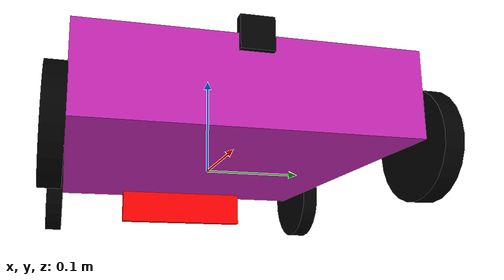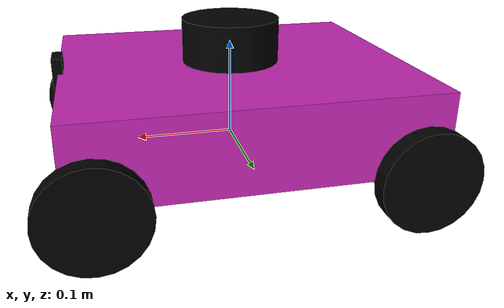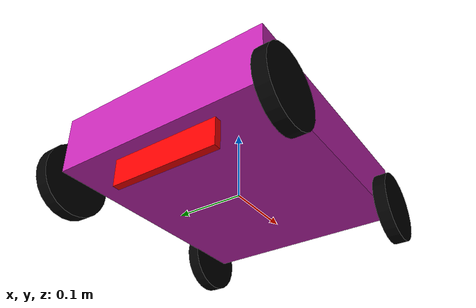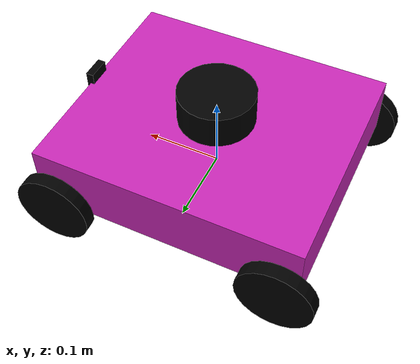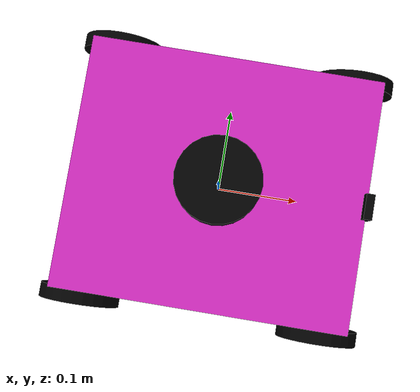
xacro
<?xml version="1.0"?>
<robot xmlns:xacro="http://www.ros.org/wiki/xacro" name="robot">
    <!-- Main URDF file for Ackermann Drive Robot -->
    <!-- Include general xacro files -->
    <xacro:include filename="inertials.xacro"/>
    <xacro:include filename="materials.xacro"/>

    <!-- Include sensors -->
    <xacro:include filename="lidar.xacro"/>
    <xacro:include filename="depth_camera.xacro"/>

    <!-- Robot Variables -->
    <xacro:property name="body_mass" value="20.0" />
    <xacro:property name="wheel_mass" value="3.0" />
    <xacro:property name="steering_mass" value="0.01" />

    <xacro:property name="body_length" value="0.35" />
    <xacro:property name="body_width" value="0.3" />
    <xacro:property name="body_heigth" value="0.08" />

    <xacro:property name="front_wheel_offset_x" value="0.15" />
    <xacro:property name="rear_wheel_offset_x" value="-0.15" />

    <xacro:property name="wheel_offset_y" value="${body_width/2 + wheel_thickness/2}" />
    <xacro:property name="wheel_offset_z" value="0.0" />

    <xacro:property name="wheel_radius" value="0.05" />
    <xacro:property name="wheel_thickness" value="0.018" />

    <!-- Base Link -->
    <link name="base_link"></link>

    <!-- Base Footprint -->
    <joint name="base_footprint_joint" type="fixed">
        <parent link="base_link"/>
        <child link="base_footprint"/>
        <origin xyz="0 0 0" rpy="0 0 0"/>
    </joint>
    <link name="base_footprint"></link>

    <!-- Chassis -->
    <joint name="chassis_joint" type="fixed">
        <parent link="base_link" />
        <child link="chassis" />
        <origin xyz="0 0 0" rpy="0 0 0" />
    </joint>
    <link name="chassis">
        <visual>
            <origin xyz="0 0 ${body_heigth/2}"/>
            <geometry>
                <box size="${body_length} ${body_width} ${body_heigth}"/>
            </geometry>
            <material name="purple"/>
        </visual>
        <collision>
            <origin xyz="0 0 ${body_heigth/2}"/>
            <geometry>
                <box size="${body_length} ${body_width} ${body_heigth}"/>
            </geometry>
        </collision>
        <xacro:inertial_box mass="${body_mass}" x="${body_length}" y="${body_width}" z="${body_heigth}">
            <origin xyz="0 0 0" rpy="0 0 0"/>
        </xacro:inertial_box>
    </link>

    <!-- Left Wheel Steer -->
    <joint name="left_steer_joint" type="revolute">
        <parent link="chassis" />
        <child link="front_left_steer" />
        <origin xyz="${front_wheel_offset_x} ${wheel_offset_y} ${wheel_offset_z}" rpy="0 0 0" />
        <axis xyz="0 0 1" />
        <limit upper="0.6" lower="-0.6" effort="-1.0" velocity="-1.0" />
    </joint>
    <link name="front_left_steer">
        <inertial>
            <origin xyz="0 0 0" rpy="0 0 0" />
            <mass value="${steering_mass}" />
            <inertia
                ixx="${steering_mass/12*(3*wheel_radius*wheel_radius + wheel_thickness*wheel_thickness)}"
                ixy="0" ixz="0"
                iyy="${steering_mass/12*(3*wheel_radius*wheel_radius + wheel_thickness*wheel_thickness)}"
                iyz="0" izz="${steering_mass/2 * wheel_radius*wheel_radius}" />
        </inertial>
    </link>

    <!-- Right Wheel Steer -->
    <joint name="right_steer_joint" type="revolute">
        <parent link="chassis" />
        <child link="front_right_steer" />
        <origin xyz="${front_wheel_offset_x} ${-wheel_offset_y} ${wheel_offset_z}" rpy="0 0 0" />
        <axis xyz="0 0 1" />
        <limit upper="0.6" lower="-0.6" effort="-1.0" velocity="-1.0" />
    </joint>
    <link name="front_right_steer">
        <inertial>
            <origin xyz="0 0 0" rpy="0 0 0" />
            <mass value="${steering_mass}" />
            <inertia
                ixx="${steering_mass/12*(3*wheel_radius*wheel_radius + wheel_thickness*wheel_thickness)}"
                ixy="0" ixz="0"
                iyy="${steering_mass/12*(3*wheel_radius*wheel_radius + wheel_thickness*wheel_thickness)}"
                iyz="0" izz="${steering_mass/2 * wheel_radius*wheel_radius}" />
        </inertial>
    </link>

    <!-- Front Left Wheel -->
    <joint name="front_left_wheel_joint" type="continuous">
        <parent link="front_left_steer" />
        <child link="front_left_wheel" />
        <origin xyz="0 0 0" rpy="1.5708 0 0.016976" />
        <axis xyz="0 0 -1" />
        <dynamics friction="0.8" damping="0.5" />
        <limit lower="-3.14159" upper="3.14159" effort="200" velocity="20" />
    </joint>
    <link name="front_left_wheel">
        <inertial>
            <origin xyz="0 0 0" rpy="0 0 0" />
            <mass value="${wheel_mass}" />
            <inertia
                ixx="${wheel_mass/12*(3*wheel_radius*wheel_radius + wheel_thickness*wheel_thickness)}"
                ixy="0" ixz="0"
                iyy="${wheel_mass/12*(3*wheel_radius*wheel_radius + wheel_thickness*wheel_thickness)}"
                iyz="0" izz="${wheel_mass/2 * wheel_radius*wheel_radius}" />
        </inertial>
        <visual>
            <origin xyz="0 0 0" rpy="0 0 0" />
            <geometry>
                <cylinder radius="${wheel_radius}" length="${wheel_thickness}" />
            </geometry>
            <material name="black"/>
        </visual>
        <collision>
            <origin xyz="0 0 0" rpy="0 0 0" />
            <geometry>
                <cylinder radius="${wheel_radius}" length="${wheel_thickness}" />
            </geometry>
        </collision>
    </link>

    <!-- Front Rigth Wheel -->
    <joint name="front_right_wheel_joint" type="continuous">
        <origin xyz="0 0 0" rpy="-1.5708 0 0.016976" />
        <parent link="front_right_steer" />
        <child link="front_right_wheel" />
        <axis xyz="0 0 1" />
        <dynamics friction="0.8" damping="0.5" />
        <limit lower="-3.14159" upper="3.14159" effort="200" velocity="20" />
    </joint>
    <link name="front_right_wheel">
        <inertial>
            <origin xyz="0 0 0" rpy="0 0 0" />
            <mass value="${wheel_mass}" />
            <inertia
                ixx="${wheel_mass/12*(3*wheel_radius*wheel_radius + wheel_thickness*wheel_thickness)}"
                ixy="0" ixz="0"
                iyy="${wheel_mass/12*(3*wheel_radius*wheel_radius + wheel_thickness*wheel_thickness)}"
                iyz="0" izz="${wheel_mass/2 * wheel_radius*wheel_radius}" />
        </inertial>
        <visual>
            <origin xyz="0 0 0" rpy="0 0 0" />
            <geometry>
                <cylinder radius="${wheel_radius}" length="${wheel_thickness}" />
            </geometry>
            <material name="black"/>
        </visual>
        <collision>
            <origin xyz="0 0 0" rpy="0 0 0" />
            <geometry>
                <cylinder radius="${wheel_radius}" length="${wheel_thickness}" />
            </geometry>
        </collision>
    </link>

    <!-- Rear Left Wheel -->
    <joint name="rear_left_wheel_joint" type="continuous">
        <origin xyz="${rear_wheel_offset_x} ${wheel_offset_y} ${wheel_offset_z}" rpy="1.5708 0 0" />
        <parent link="chassis" />
        <child link="rear_left_wheel" />
        <axis xyz="0 0 -1" />
        <dynamics friction="0.8" damping="0.5" />
        <limit lower="-3.14159" upper="3.14159" effort="70" velocity="20" />
    </joint>
    <link name="rear_left_wheel">
        <inertial>
            <origin xyz="0 0 0" rpy="0 0 0" />
            <mass value="${wheel_mass}" />
            <inertia
                ixx="${wheel_mass/12*(3*wheel_radius*wheel_radius + wheel_thickness*wheel_thickness)}"
                ixy="0" ixz="0"
                iyy="${wheel_mass/12*(3*wheel_radius*wheel_radius + wheel_thickness*wheel_thickness)}"
                iyz="0" izz="${wheel_mass/2 * wheel_radius*wheel_radius}" />
        </inertial>
        <visual>
            <origin xyz="0 0 0" rpy="0 0 0" />
            <geometry>
                <cylinder radius="${wheel_radius}" length="${wheel_thickness}" />
            </geometry>
            <material name="black"/>
        </visual>
        <collision>
            <origin xyz="0 0 0" rpy="0 0 0" />
            <geometry>
                <cylinder radius="${wheel_radius}" length="${wheel_thickness}" />
            </geometry>
        </collision>
    </link>

    <!-- Rear Rigth Wheel -->
    <joint name="rear_right_wheel_joint" type="continuous">
        <origin xyz="${rear_wheel_offset_x} ${-wheel_offset_y} ${wheel_offset_z}" rpy="-1.5708 0 0" />
        <parent link="chassis" />
        <child link="rear_right_wheel" />
        <axis xyz="0 0 1" />
        <dynamics friction="0.8" damping="0.5" />
        <limit lower="-3.14159" upper="3.14159" effort="70" velocity="20" />
    </joint>
    <link name="rear_right_wheel">
        <inertial>
            <origin xyz="0 0 0" rpy="0 0 0" />
            <mass value="${wheel_mass}" />
            <inertia
                ixx="${wheel_mass/12*(3*wheel_radius*wheel_radius + wheel_thickness*wheel_thickness)}"
                ixy="0" ixz="0"
                iyy="${wheel_mass/12*(3*wheel_radius*wheel_radius + wheel_thickness*wheel_thickness)}"
                iyz="0" izz="${wheel_mass/2 * wheel_radius*wheel_radius}" />
        </inertial>
        <visual>
            <origin xyz="0 0 0" rpy="0 0 0" />
            <geometry>
                <cylinder radius="${wheel_radius}" length="${wheel_thickness}" />
            </geometry>
            <material name="black"/>
        </visual>
        <collision>
            <origin xyz="0 0 0" rpy="0 0 0" />
            <geometry>
                <cylinder radius="${wheel_radius}" length="${wheel_thickness}" />
            </geometry>
        </collision>
    </link>

    <!-- Virtual Steering wheel -->
    <joint name="virtual_steering_wheel_joint" type="revolute">
        <origin xyz="${rear_wheel_offset_x} 0 0" rpy="0 0 0" />
        <parent link="chassis" />
        <child link="virtual_steer" />
        <axis xyz="-1 0 0" />
        <limit lower="-3" upper="3" effort="200" velocity="20" />
    </joint>
    <link name="virtual_steer">
        <visual>
            <origin xyz="0 0 0" rpy="0 0 0" />
            <geometry>
                <box size="0.01 0.15 0.075" />
            </geometry>
            <material name="red"/>
        </visual>
        <inertial>
            <origin xyz="0 0 0" rpy="0 0 0" />
            <mass value="0.001" />
            <inertia ixx="0.0" ixy="0.0" ixz="0.0" iyy="0.0" iyz="0.0" izz="0.0" />
        </inertial>
    </link>

    <!-- Gazebo -->
    <gazebo reference="chassis">
        <material>Gazebo/Blue</material>
    </gazebo>

    <gazebo reference="front_left_wheel">
        <material>Gazebo/Black</material>
    </gazebo>

    <gazebo reference="front_right_wheel">
        <material>Gazebo/Black</material>
    </gazebo>

    <gazebo reference="rear_left_wheel">
        <material>Gazebo/Black</material>
    </gazebo>

    <gazebo reference="rear_right_wheel">
        <material>Gazebo/Black</material>
    </gazebo>

    <gazebo reference="virtual_steer">
        <material>Gazebo/Red</material>
    </gazebo>

    <!-- Gazebo plugin for Ackermann Robot -->
    <gazebo>
        <plugin name='gazebo_ackermann_drive' filename='libgazebo_ros_ackermann_drive.so'>
            <update_rate>100.0</update_rate>
            <!-- Wheels -->
            <front_left_joint>front_left_wheel_joint</front_left_joint>
            <front_right_joint>front_right_wheel_joint</front_right_joint>
            <rear_left_joint>rear_left_wheel_joint</rear_left_joint>
            <rear_right_joint>rear_right_wheel_joint</rear_right_joint>
            <left_steering_joint>left_steer_joint</left_steering_joint>
            <right_steering_joint>right_steer_joint</right_steering_joint>
            <steering_wheel_joint>virtual_steering_wheel_joint</steering_wheel_joint>
            <!-- Limits -->
            <max_speed>20</max_speed>
            <max_steer>1.5</max_steer>
            <max_steering_angle>9.0</max_steering_angle>
            <!-- PID tuning -->
            <left_steering_pid_gain>200 0 1</left_steering_pid_gain>
            <left_steering_i_range>0 0</left_steering_i_range>
            <right_steering_pid_gain>200 0 1</right_steering_pid_gain>
            <right_steering_i_range>0 0</right_steering_i_range>
            <linear_velocity_pid_gain>200 0 1</linear_velocity_pid_gain>
            <linear_velocity_i_range>0 0</linear_velocity_i_range>
            <!-- Output -->
            <publish_odom>true</publish_odom>
            <publish_odom_tf>true</publish_odom_tf>
            <publish_wheel_tf>true</publish_wheel_tf>
            <publish_distance>true</publish_distance>
            <!-- Frames -->
            <odometry_frame>odom</odometry_frame>
            <robot_base_frame>base_link</robot_base_frame>
        </plugin>
    </gazebo>
</robot>

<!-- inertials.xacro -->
<robot xmlns:xacro="http://www.ros.org/wiki/xacro" >
    <!-- This file contains the inertial macros used across the URDF files -->
    <!-- Inertial Sphere Macros -->
    <xacro:macro name="inertial_sphere" params="mass radius *origin">
        <inertial>
            <xacro:insert_block name="origin"/>
            <mass value="${mass}" />
            <inertia ixx="${(2/5) * mass * (radius*radius)}" ixy="0.0" ixz="0.0"
                    iyy="${(2/5) * mass * (radius*radius)}" iyz="0.0"
                    izz="${(2/5) * mass * (radius*radius)}" />
        </inertial>
    </xacro:macro>
    <!-- Inertial Box Macros -->
    <xacro:macro name="inertial_box" params="mass x y z *origin">
        <inertial>
            <xacro:insert_block name="origin"/>
            <mass value="${mass}" />
            <inertia ixx="${(1/12) * mass * (y*y+z*z)}" ixy="0.0" ixz="0.0"
                    iyy="${(1/12) * mass * (x*x+z*z)}" iyz="0.0"
                    izz="${(1/12) * mass * (x*x+y*y)}" />
        </inertial>
    </xacro:macro>
    <!-- Inertial Cylinder Macros -->
    <xacro:macro name="inertial_cylinder" params="mass length radius *origin">
        <inertial>
            <xacro:insert_block name="origin"/>
            <mass value="${mass}" />
            <inertia ixx="${(1/12) * mass * (3*radius*radius + length*length)}" ixy="0.0" ixz="0.0"
                    iyy="${(1/12) * mass * (3*radius*radius + length*length)}" iyz="0.0"
                    izz="${(1/2) * mass * (radius*radius)}" />
        </inertial>
    </xacro:macro>
    <!-- Add more here -->
</robot>

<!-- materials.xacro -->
<robot xmlns:xacro="http://www.ros.org/wiki/xacro" >
    <!-- This file contains the materials macros used across the URDF files -->
    <material name="white">
        <color rgba="1 1 1 1" />
    </material>

    <material name="orange">
        <color rgba="1 0.3 0.1 1"/>
    </material>

    <material name="blue">
        <color rgba="0.2 0.2 1 1"/>
    </material>

    <material name="black">
        <color rgba="0 0 0 1"/>
    </material>

    <material name="red">
        <color rgba="1 0 0 1"/>
    </material>

    <material name="grey">
        <color rgba="0.631 0.631 0.631 1"/>
    </material>

    <material name="purple">
        <color rgba="0.78 0.153 0.71 1"/>
    </material>

    <material name="green">
        <color rgba="0.149 0.612 0.082 1"/>
    </material>
    <!-- Add more here -->
</robot>

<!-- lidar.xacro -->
<robot xmlns:xacro="http://www.ros.org/wiki/xacro" >
    <!-- Lidar's urdf-->
    <joint name="laser_joint" type="fixed">
        <parent link="chassis"/>
        <child link="laser_frame"/>
        <origin xyz="0 0 0.1" rpy="0 0 0"/>
    </joint>
    <link name="laser_frame">
        <visual>
            <geometry>
                <cylinder radius="0.05" length="0.05"/>
            </geometry>
            <material name="black"/>
        </visual>
        <collision>
            <geometry>
                <cylinder radius="0.05" length="0.05"/>
            </geometry>
        </collision>
        <xacro:inertial_cylinder mass="0.1" length="0.05" radius="0.05">
            <origin xyz="0 0 0" rpy="0 0 0"/>
        </xacro:inertial_cylinder>
    </link>

    <!-- 2D Lidar New Gazebo Sensor Plugin  -->
    <gazebo reference="laser_frame">
        <material>Gazebo/Black</material>

        <sensor name="laser" type="gpu_lidar">
            <pose> 0 0 0 0 0 0 </pose>
            <always_on>true</always_on>
            <visualize>true</visualize>
            <update_rate>10</update_rate>
            <topic>scan</topic>
            <gz_frame_id>laser_frame</gz_frame_id>
            <lidar>
                <scan>
                    <horizontal>
                        <samples>360</samples>
                        <min_angle>-3.14</min_angle>
                        <max_angle>3.14</max_angle>
                    </horizontal>
                </scan>
                <range>
                    <min>0.3</min>
                    <max>12</max>
                </range>
            </lidar>
        </sensor>
    </gazebo>

</robot>

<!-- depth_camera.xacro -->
<robot xmlns:xacro="http://www.ros.org/wiki/xacro" >
    <!-- Depth camera's urdf -->
    <joint name="camera_joint" type="fixed">
        <parent link="chassis"/>
        <child link="camera_link"/>
        <origin xyz="0.175 0 0.08" rpy="0 0 0"/>
    </joint>
    <link name="camera_link">
        <visual>
            <geometry>
                <box size="0.010 0.03 0.03"/>
            </geometry>
            <material name="black"/>
        </visual>
    </link>
    <!-- Depth camera Optical link -->
    <joint name="camera_optical_joint" type="fixed">
        <parent link="camera_link"/>
        <child link="camera_link_optical"/>
        <origin xyz="0 0 0" rpy="${-pi/2} 0 ${-pi/2}"/>
    </joint>
    <link name="camera_link_optical"></link>

    <!-- Depth camera Gazebo Sensor Plugin -->
    <gazebo reference="camera_link">
        <material>Gazebo/Black</material>

        <sensor name="rgbd_camera" type="rgbd_camera">
            <pose> 0 0 0 0 0 0 </pose>
            <always_on>true</always_on>
            <visualize>true</visualize>
            <update_rate>30</update_rate>
            <topic>camera</topic>
            <gz_frame_id>camera_link</gz_frame_id>
            <camera>
                <optical_frame_id>camera_link_optical</optical_frame_id>
                <camera_info_topic>camera/camera_info</camera_info_topic>
                <horizontal_fov>1.089</horizontal_fov>
                <image>
                    <format>R8G8B8</format>
                    <width>640</width>
                    <height>480</height>
                </image>
                <clip>
                    <near>0.05</near>
                    <far>8.0</far>
                </clip>
            </camera>
        </sensor>

    </gazebo>

</robot>
